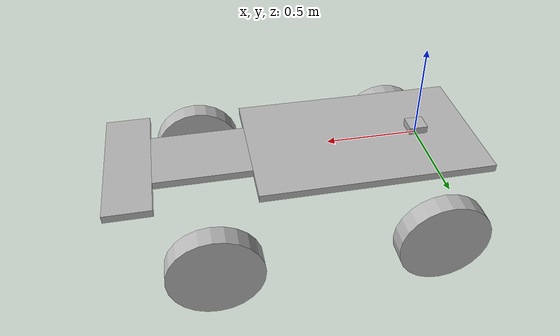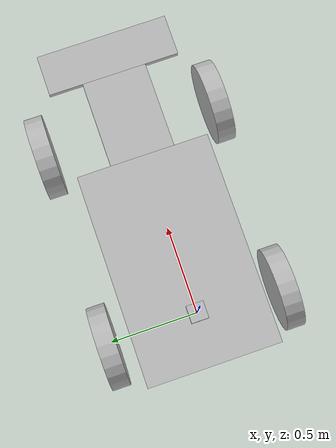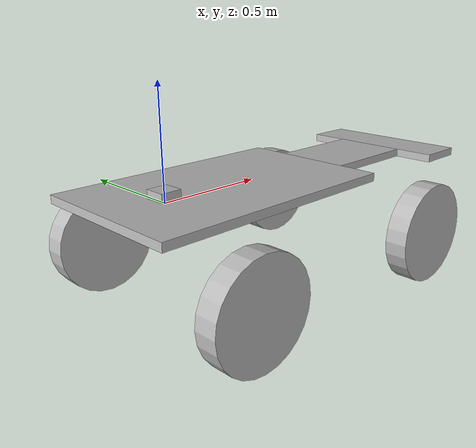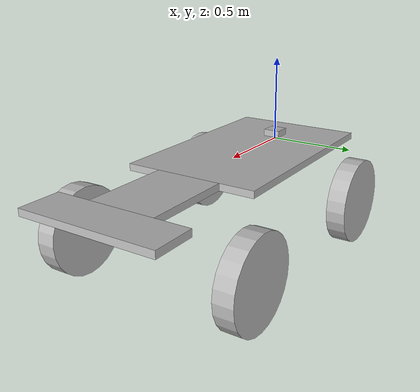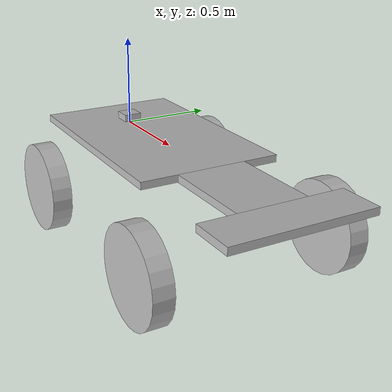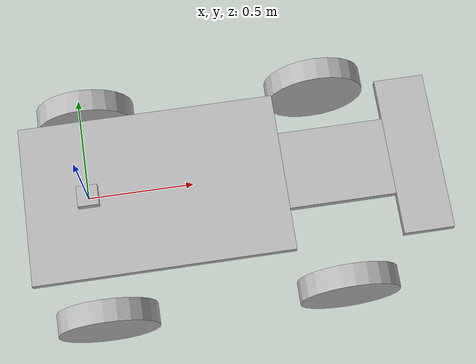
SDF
<sdf version='1.7'>
  <model name='beetle'>
    <link name='base_link'>
      <inertial>
        <pose>0.690274 0 2.5e-05 0 -0 0</pose>
        <mass>40.1</mass>
        <inertia>
          <ixx>2.03351</ixx>
          <ixy>0</ixy>
          <ixz>0.000690274</ixz>
          <iyy>13.2536</iyy>
          <iyz>0</iyz>
          <izz>15.2763</izz>
        </inertia>
      </inertial>
      <collision name='base_link_collision'>
        <pose>0.692 0 0 0 -0 0</pose>
        <geometry>
          <box>
            <size>1.99 0.78 0.04</size>
          </box>
        </geometry>
      </collision>
      <collision name='base_link_fixed_joint_lump__imu_link_collision_1'>
        <pose>0 0 0.01 0 -0 0</pose>
        <geometry>
          <box>
            <size>0.1 0.1 0.1</size>
          </box>
        </geometry>
        <surface>
          <contact>
            <ode/>
          </contact>
          <friction>
            <ode/>
          </friction>
        </surface>
      </collision>
      <visual name='base_link_visual'>
        <pose>0.317 0 0 0 -0 0</pose>
        <geometry>
          <box>
            <size>1.24 0.78 0.04</size>
          </box>
        </geometry>
      </visual>
      <visual name='base_link_visual_1'>
        <pose>1.192 0 0 0 -0 0</pose>
        <geometry>
          <box>
            <size>0.51 0.38 0.04</size>
          </box>
        </geometry>
      </visual>
      <visual name='base_link_visual_2'>
        <pose>1.567 0 0 0 -0 0</pose>
        <geometry>
          <box>
            <size>0.24 0.78 0.04</size>
          </box>
        </geometry>
      </visual>
      <visual name='base_link_fixed_joint_lump__imu_link_visual_3'>
        <pose>0 0 0.01 0 -0 0</pose>
        <geometry>
          <box>
            <size>0.1 0.1 0.1</size>
          </box>
        </geometry>
      </visual>
      <sensor name='imu_sensor' type='imu'>
        <plugin name='imu_plugin' filename='libgazebo_ros_imu_sensor.so'>
          <ros>
            <remapping>~/out:=/imu</remapping>
          </ros>
          <initial_orientation_as_reference>0</initial_orientation_as_reference>
        </plugin>
        <always_on>1</always_on>
        <update_rate>100</update_rate>
        <visualize>1</visualize>
        <imu>
          <angular_velocity>
            <x>
              <noise type='gaussian'>
                <mean>0</mean>
                <stddev>0.0002</stddev>
                <bias_mean>7.5e-06</bias_mean>
                <bias_stddev>8e-07</bias_stddev>
              </noise>
            </x>
            <y>
              <noise type='gaussian'>
                <mean>0</mean>
                <stddev>0.0002</stddev>
                <bias_mean>7.5e-06</bias_mean>
                <bias_stddev>8e-07</bias_stddev>
              </noise>
            </y>
            <z>
              <noise type='gaussian'>
                <mean>0</mean>
                <stddev>0.0002</stddev>
                <bias_mean>7.5e-06</bias_mean>
                <bias_stddev>8e-07</bias_stddev>
              </noise>
            </z>
          </angular_velocity>
          <linear_acceleration>
            <x>
              <noise type='gaussian'>
                <mean>0</mean>
                <stddev>0.017</stddev>
                <bias_mean>0.1</bias_mean>
                <bias_stddev>0.001</bias_stddev>
              </noise>
            </x>
            <y>
              <noise type='gaussian'>
                <mean>0</mean>
                <stddev>0.017</stddev>
                <bias_mean>0.1</bias_mean>
                <bias_stddev>0.001</bias_stddev>
              </noise>
            </y>
            <z>
              <noise type='gaussian'>
                <mean>0</mean>
                <stddev>0.017</stddev>
                <bias_mean>0.1</bias_mean>
                <bias_stddev>0.001</bias_stddev>
              </noise>
            </z>
          </linear_acceleration>
        </imu>
        <pose>0 0 0.01 0 -0 0</pose>
      </sensor>
    </link>
    <joint name='front_left_wheel_joint' type='revolute'>
      <pose relative_to='base_link'>1.19 0.533 -0.305 -1.5708 0 0</pose>
      <parent>base_link</parent>
      <child>front_left_wheel_link</child>
      <axis>
        <xyz>1 0 0</xyz>
        <limit>
          <lower>-1e+16</lower>
          <upper>1e+16</upper>
        </limit>
        <dynamics>
          <spring_reference>0</spring_reference>
          <spring_stiffness>0</spring_stiffness>
        </dynamics>
      </axis>
    </joint>
    <link name='front_left_wheel_link'>
      <pose relative_to='front_left_wheel_joint'>0 0 0 0 -0 0</pose>
      <inertial>
        <pose>0 0 0 0 -0 0</pose>
        <mass>8</mass>
        <inertia>
          <ixx>0.133067</ixx>
          <ixy>0</ixy>
          <ixz>0</ixz>
          <iyy>0.133067</iyy>
          <iyz>0</iyz>
          <izz>0.25</izz>
        </inertia>
      </inertial>
      <collision name='front_left_wheel_link_collision'>
        <pose>0 0 0 0 -0 0</pose>
        <geometry>
          <cylinder>
            <length>0.11</length>
            <radius>0.25</radius>
          </cylinder>
        </geometry>
      </collision>
      <visual name='front_left_wheel_link_visual'>
        <pose>0 0 0 0 -0 0</pose>
        <geometry>
          <cylinder>
            <length>0.11</length>
            <radius>0.25</radius>
          </cylinder>
        </geometry>
      </visual>
    </link>
    <joint name='front_right_wheel_joint' type='revolute'>
      <pose relative_to='base_link'>1.19 -0.533 -0.305 1.5708 -0 0</pose>
      <parent>base_link</parent>
      <child>front_right_wheel_link</child>
      <axis>
        <xyz>1 0 0</xyz>
        <limit>
          <lower>-1e+16</lower>
          <upper>1e+16</upper>
        </limit>
        <dynamics>
          <spring_reference>0</spring_reference>
          <spring_stiffness>0</spring_stiffness>
        </dynamics>
      </axis>
    </joint>
    <link name='front_right_wheel_link'>
      <pose relative_to='front_right_wheel_joint'>0 0 0 0 -0 0</pose>
      <inertial>
        <pose>0 0 0 0 -0 0</pose>
        <mass>8</mass>
        <inertia>
          <ixx>0.133067</ixx>
          <ixy>0</ixy>
          <ixz>0</ixz>
          <iyy>0.133067</iyy>
          <iyz>0</iyz>
          <izz>0.25</izz>
        </inertia>
      </inertial>
      <collision name='front_right_wheel_link_collision'>
        <pose>0 0 0 0 -0 0</pose>
        <geometry>
          <cylinder>
            <length>0.11</length>
            <radius>0.25</radius>
          </cylinder>
        </geometry>
      </collision>
      <visual name='front_right_wheel_link_visual'>
        <pose>0 0 0 0 -0 0</pose>
        <geometry>
          <cylinder>
            <length>0.11</length>
            <radius>0.25</radius>
          </cylinder>
        </geometry>
      </visual>
    </link>
    <joint name='rear_left_wheel_joint' type='revolute'>
      <pose relative_to='base_link'>0 0.533 -0.305 -1.5708 0 0</pose>
      <parent>base_link</parent>
      <child>rear_left_wheel_link</child>
      <axis>
        <xyz>1 0 0</xyz>
        <limit>
          <lower>-1e+16</lower>
          <upper>1e+16</upper>
        </limit>
        <dynamics>
          <spring_reference>0</spring_reference>
          <spring_stiffness>0</spring_stiffness>
        </dynamics>
      </axis>
    </joint>
    <link name='rear_left_wheel_link'>
      <pose relative_to='rear_left_wheel_joint'>0 0 0 0 -0 0</pose>
      <inertial>
        <pose>0 0 0 0 -0 0</pose>
        <mass>8</mass>
        <inertia>
          <ixx>0.133067</ixx>
          <ixy>0</ixy>
          <ixz>0</ixz>
          <iyy>0.133067</iyy>
          <iyz>0</iyz>
          <izz>0.25</izz>
        </inertia>
      </inertial>
      <collision name='rear_left_wheel_link_collision'>
        <pose>0 0 0 0 -0 0</pose>
        <geometry>
          <cylinder>
            <length>0.11</length>
            <radius>0.25</radius>
          </cylinder>
        </geometry>
      </collision>
      <visual name='rear_left_wheel_link_visual'>
        <pose>0 0 0 0 -0 0</pose>
        <geometry>
          <cylinder>
            <length>0.11</length>
            <radius>0.25</radius>
          </cylinder>
        </geometry>
      </visual>
    </link>
    <joint name='rear_right_wheel_joint' type='revolute'>
      <pose relative_to='base_link'>0 -0.533 -0.305 1.5708 -0 0</pose>
      <parent>base_link</parent>
      <child>rear_right_wheel_link</child>
      <axis>
        <xyz>1 0 0</xyz>
        <limit>
          <lower>-1e+16</lower>
          <upper>1e+16</upper>
        </limit>
        <dynamics>
          <spring_reference>0</spring_reference>
          <spring_stiffness>0</spring_stiffness>
        </dynamics>
      </axis>
    </joint>
    <link name='rear_right_wheel_link'>
      <pose relative_to='rear_right_wheel_joint'>0 0 0 0 -0 0</pose>
      <inertial>
        <pose>0 0 0 0 -0 0</pose>
        <mass>8</mass>
        <inertia>
          <ixx>0.133067</ixx>
          <ixy>0</ixy>
          <ixz>0</ixz>
          <iyy>0.133067</iyy>
          <iyz>0</iyz>
          <izz>0.25</izz>
        </inertia>
      </inertial>
      <collision name='rear_right_wheel_link_collision'>
        <pose>0 0 0 0 -0 0</pose>
        <geometry>
          <cylinder>
            <length>0.11</length>
            <radius>0.25</radius>
          </cylinder>
        </geometry>
      </collision>
      <visual name='rear_right_wheel_link_visual'>
        <pose>0 0 0 0 -0 0</pose>
        <geometry>
          <cylinder>
            <length>0.11</length>
            <radius>0.25</radius>
          </cylinder>
        </geometry>
      </visual>
    </link>
  </model>
</sdf>
